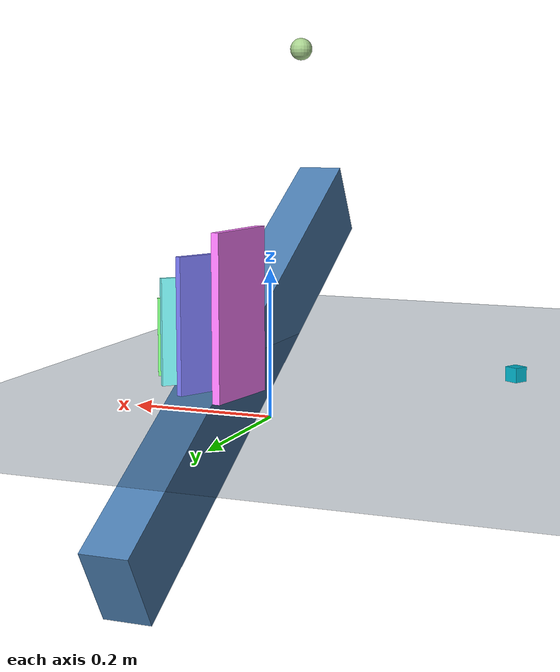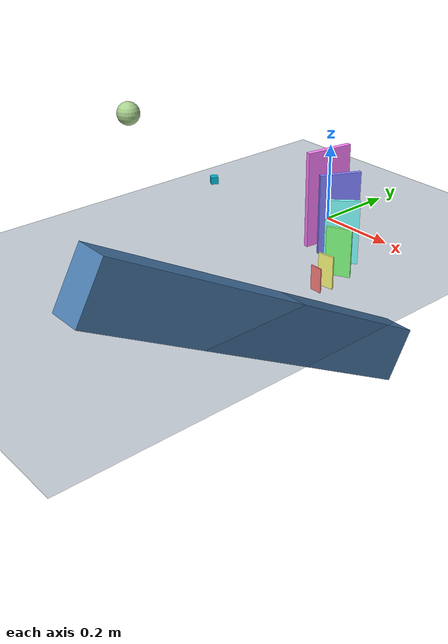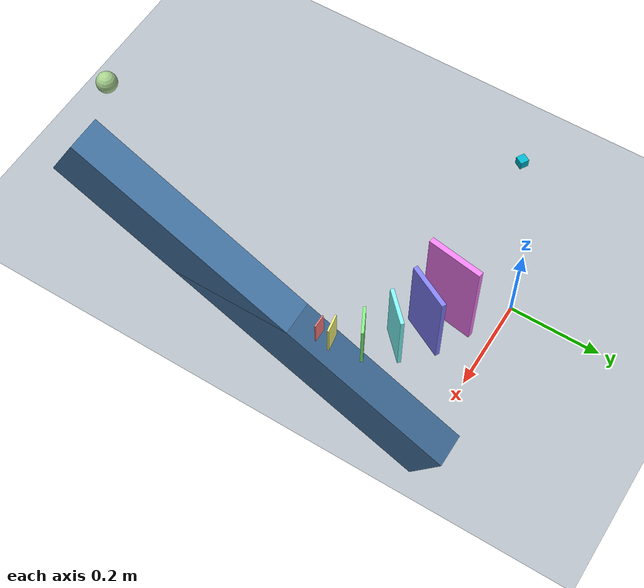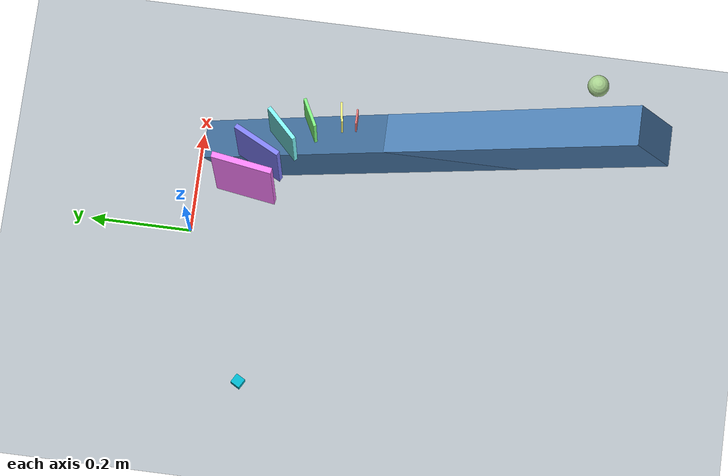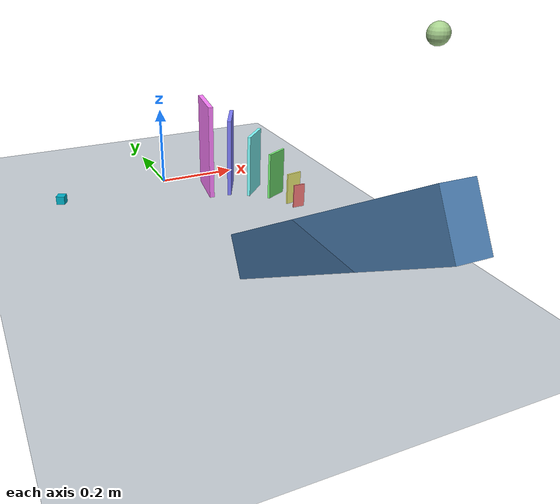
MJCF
<mujoco>
  <asset>
    <texture type="skybox" builtin="gradient" rgb1=".3 .5 .7" rgb2="0 0 0" width="32" height="512"/>
    <texture name="grid" type="2d" builtin="checker" width="512" height="512" rgb1=".1 .2 .3" rgb2=".2 .3 .4"/>
    <material name="grid" texture="grid" texrepeat="2 2" texuniform="true" reflectance=".2"/>
  </asset>

  <statistic meansize=".01"/>

  <visual>
    <global offheight="2160" offwidth="3840"/>
    <quality offsamples="8"/>
  </visual>

  <default>
    <geom type="box" solref=".005 1"/>
    <default class="static">
      <geom rgba=".3 .5 .7 1"/>
    </default>
  </default>

  <option timestep="5e-4"/>

  <worldbody>
    <light pos=".3 -.3 .8" mode="trackcom" diffuse="1 1 1" specular=".3 .3 .3"/>
    <light pos="0 -.3 .4" mode="targetbodycom" target="box" diffuse=".8 .8 .8" specular=".3 .3 .3"/>
    <geom name="floor" type="plane" size="3 3 .01" pos="-0.025 -0.295  0" material="grid"/>
    <geom name="ramp" pos=".25 -.45 -.03" size=".04 .5 .07" euler="-30 0 0" class="static"/>
    <camera name="top" pos="-0.37 -0.78 0.49" xyaxes="0.78 -0.63 0 0.27 0.33 0.9"/>

    <body name="ball" pos=".25 -.75 .5">
      <freejoint name="ball"/>
      <geom name="ball" type="sphere" size=".02" rgba=".65 .81 .55 1"/>
    </body>

    <body pos=".26 -.3 .03" euler="0 0 -90.0">
      <freejoint/>
      <geom size=".0015 .015 .03" rgba="1 .5 .5 1"/>
    </body>

    <body pos=".26 -.27 .04" euler="0 0 -81.0">
      <freejoint/>
      <geom size=".002 .02 .04" rgba="1 1 .5 1"/>
    </body>

    <body pos=".24 -.21 .06" euler="0 0 -63.0">
      <freejoint/>
      <geom size=".003 .03 .06" rgba=".5 1 .5 1"/>
    </body>

    <body pos=".2 -.16 .08" euler="0 0 -45.0">
      <freejoint/>
      <geom size=".004 .04 .08" rgba=".5 1 1 1"/>
    </body>

    <body pos=".15 -.12 .1" euler="0 0 -27.0">
      <freejoint/>
      <geom size=".005 .05 .1" rgba=".5 .5 1 1"/>
    </body>

    <body pos=".09 -.1 .12" euler="0 0 -9.0">
      <freejoint/>
      <geom size=".006 .06 .12" rgba="1 .5 1 1"/>
    </body>

    <body name="box" pos="-.3 -.14 .05501" euler="0 0 -30">
      <freejoint name="box"/>
      <geom name="box" size=".01 .01 .01" rgba=".0 .7 .79 1"/>
    </body>
  </worldbody>
</mujoco>
